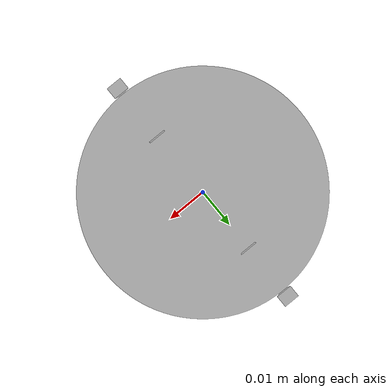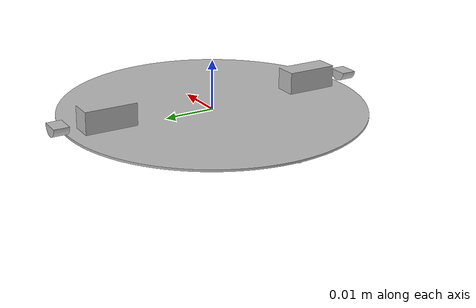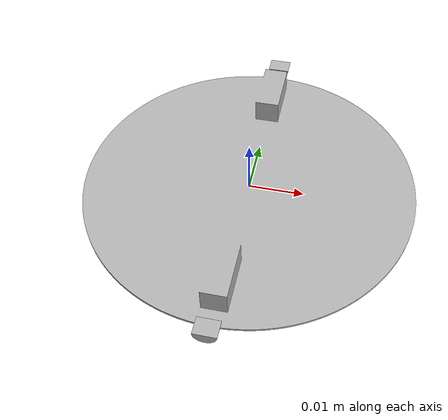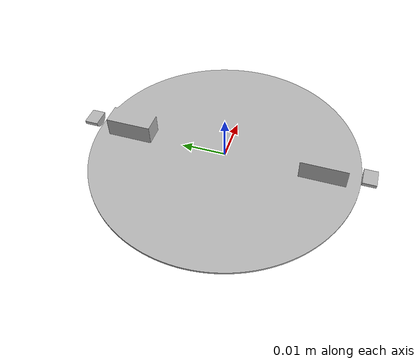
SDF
<sdf version='1.7'>
  <model name='microrobot'>
    <link name='dummy_link'>
      <inertial>
        <pose>0 0 0 0 -0 0</pose>
        <mass>0.12002</mass>
        <inertia>
          <ixx>2.75891e-05</ixx>
          <ixy>0</ixy>
          <ixz>1.775e-16</ixz>
          <iyy>2.6597e-05</iyy>
          <iyz>0</iyz>
          <izz>5.41536e-05</izz>
        </inertia>
      </inertial>
      <collision name='dummy_link_fixed_joint_lump__platform_link_collision'>
        <pose>0 0 0 0 -0 0</pose>
        <geometry>
          <mesh>
            <scale>0.001 0.001 0.001</scale>
            <uri>model://microrobot/meshes/colision_mesh/platform_collision_mesh_v3.stl</uri>
          </mesh>
        </geometry>
        <surface>
        <friction>
          <ode>
            <mu>0.04</mu>
          </ode>
        </friction>
      </surface>
      </collision>
      <visual name='dummy_link_fixed_joint_lump__platform_link_visual'>
        <pose>0 0 0 0 -0 0</pose>
        <geometry>
          <mesh>
            <scale>0.001 0.001 0.001</scale>
            <uri>model://microrobot/meshes/colision_mesh/platform_collision_mesh_v3.stl</uri>
          </mesh>
        </geometry>
      </visual>
    </link>
    <joint name='left_eccenter_joint' type='revolute'>
      <pose relative_to='dummy_link'>0 0.03 0.003 0 -0 0</pose>
      <parent>dummy_link</parent>
      <child>left_eccenter_link</child>
      <axis>
        <xyz>0 1 0</xyz>
        <limit>
          <lower>-1e+16</lower>
          <upper>1e+16</upper>
        </limit>
        <dynamics>
          <spring_reference>0</spring_reference>
          <spring_stiffness>0</spring_stiffness>
        </dynamics>
      </axis>
    </joint>
    <link name='left_eccenter_link'>
      <pose relative_to='left_eccenter_joint'>0 0 0 0 -0 0</pose>
      <inertial>
        <pose>0 0 0 0 -0 0</pose>
        <mass>0.000217</mass>
        <inertia>
          <ixx>2.23e-10</ixx>
          <ixy>0</ixy>
          <ixz>0</ixz>
          <iyy>2.78e-10</iyy>
          <iyz>0</iyz>
          <izz>3.8e-10</izz>
        </inertia>
      </inertial>
      <collision name='left_eccenter_link_collision'>
        <pose>0 0 0 0 -0 0</pose>
        <geometry>
          <mesh>
            <scale>0.001 0.001 0.001</scale>
            <uri>model://microrobot/meshes/colision_mesh/eccenter_collision_mesh_v2.stl</uri>
          </mesh>
        </geometry>
      </collision>
      <visual name='left_eccenter_link_visual'>
        <pose>0 0 0 0 -0 0</pose>
        <geometry>
          <mesh>
            <scale>0.001 0.001 0.001</scale>
            <uri>model://microrobot/meshes/colision_mesh/eccenter_collision_mesh_v2.stl</uri>
          </mesh>
        </geometry>
      </visual>
    </link>
    <joint name='right_eccenter_joint' type='revolute'>
      <pose relative_to='dummy_link'>0 -0.03 0.003 0 -0 3.14159</pose>
      <parent>dummy_link</parent>
      <child>right_eccenter_link</child>
      <axis>
        <xyz>0 1 0</xyz>
        <limit>
          <lower>-1e+16</lower>
          <upper>1e+16</upper>
        </limit>
        <dynamics>
          <spring_reference>0</spring_reference>
          <spring_stiffness>0</spring_stiffness>
        </dynamics>
      </axis>
    </joint>
    <link name='right_eccenter_link'>
      <pose relative_to='right_eccenter_joint'>0 0 0 0 -0 0</pose>
      <inertial>
        <pose>0 0 0 0 -0 0</pose>
        <mass>0.00021</mass>
        <inertia>
          <ixx>2.39e-10</ixx>
          <ixy>0</ixy>
          <ixz>0</ixz>
          <iyy>2.71e-10</iyy>
          <iyz>-2e-12</iyz>
          <izz>3.44e-10</izz>
        </inertia>
      </inertial>
      <collision name='right_eccenter_link_collision'>
        <pose>0 0 0 0 -0 0</pose>
        <geometry>
          <mesh>
            <scale>0.001 0.001 0.001</scale>
            <uri>model://microrobot/meshes/colision_mesh/eccenter_collision_mesh_v2.stl</uri>
          </mesh>
        </geometry>
      </collision>
      <visual name='right_eccenter_link_visual'>
        <pose>0 0 0 0 -0 0</pose>
        <geometry>
          <mesh>
            <scale>0.001 0.001 0.001</scale>
            <uri>model://microrobot/meshes/colision_mesh/eccenter_collision_mesh_v2.stl</uri>
          </mesh>
        </geometry>
      </visual>
    </link>
  </model>
</sdf>
